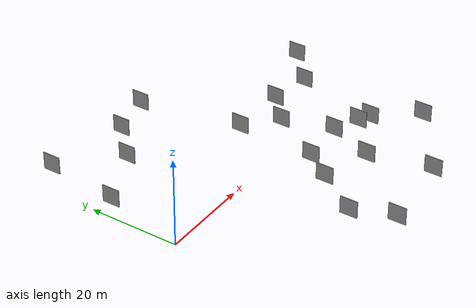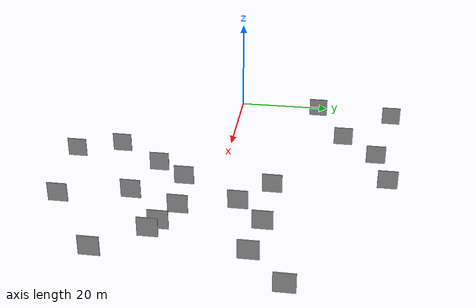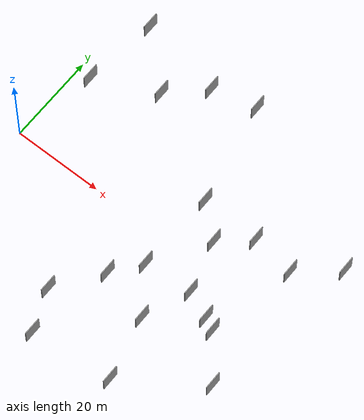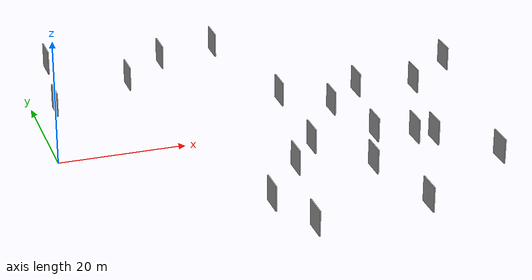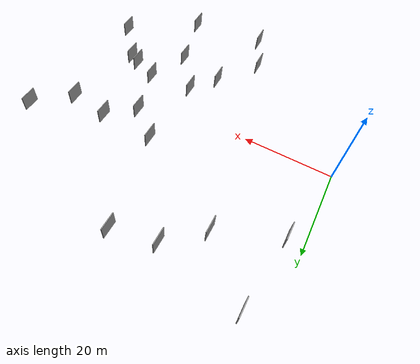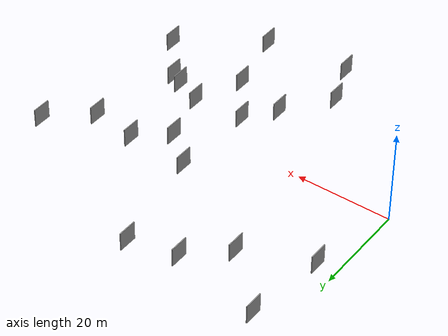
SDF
<sdf version="1.6">
 <world name="default">
  <scene>
   <sky><clouds><speed>12</speed></clouds></sky>
   <ambient>0.4 0.4 0.4 1</ambient>
   <background>0.7 0.7 0.7 1</background>
   <shadows>1</shadows>
  </scene>
  <gravity>0 0 -9.8066</gravity>
  <magnetic_field>6e-06 2.3e-05 -4.2e-05</magnetic_field>
  <physics default="0" name="default_physics" type="ode">
   <ode>
    <solver>
     <type>quick</type>
     <iters>10</iters>
     <sor>1.0</sor>
     <use_dynamic_moi_rescaling>0</use_dynamic_moi_rescaling>
    </solver>
    <constraints>
     <cfm>0</cfm>
     <erp>0.2</erp>
     <contact_max_correcting_vel>100</contact_max_correcting_vel>
     <contact_surface_layer>0.001</contact_surface_layer>
    </constraints>
   </ode>
   <max_step_size>0.004</max_step_size>
   <real_time_factor>1</real_time_factor>
   <real_time_update_rate>250</real_time_update_rate>
  </physics>
  <light name="sun" type="directional">
   <pose>0 0 10 0 0 0</pose>
   <diffuse>0.8 0.8 0.8 1</diffuse>
   <specular>0.2 0.2 0.2 1</specular>
   <attenuation>
    <range>1000</range>
    <constant>0.9</constant>
    <linear>0.01</linear>
    <quadratic>0.001</quadratic>
   </attenuation>
   <direction>-0.5 0.1 -0.9</direction>
  </light>
  <model name="grey_wall_1">
   <static>1</static>
   <pose>38.9085 11.0571 0.0 0.000000 0.000000 1.570796</pose>
   <link name="link">
    <pose>0 0 2.00 0 0 0</pose>
    <collision name="collision"><geometry><box><size>4.00 0.2 4.00</size></box></geometry></collision>
    <visual name="visual">
     <cast_shadows>0</cast_shadows>
     <geometry><box><size>4.00 0.2 4.00</size></box></geometry>
     <material>
      <script>
       <uri>model://grey_wall/materials/scripts</uri>
       <uri>model://grey_wall/materials/textures</uri>
       <name>vrc/grey_wall</name>
      </script>
     </material>
    </visual>
   </link>
  </model>
  <model name="grey_wall_2">
   <static>1</static>
   <pose>5.6826 34.9874 0.0 0.000000 0.000000 1.570796</pose>
   <link name="link">
    <pose>0 0 2.00 0 0 0</pose>
    <collision name="collision"><geometry><box><size>4.00 0.2 4.00</size></box></geometry></collision>
    <visual name="visual">
     <cast_shadows>0</cast_shadows>
     <geometry><box><size>4.00 0.2 4.00</size></box></geometry>
     <material>
      <script>
       <uri>model://grey_wall/materials/scripts</uri>
       <uri>model://grey_wall/materials/textures</uri>
       <name>vrc/grey_wall</name>
      </script>
     </material>
    </visual>
   </link>
  </model>
  <model name="grey_wall_3">
   <static>1</static>
   <pose>54.5707 -8.5110 0.0 0.000000 0.000000 1.570796</pose>
   <link name="link">
    <pose>0 0 2.00 0 0 0</pose>
    <collision name="collision"><geometry><box><size>4.00 0.2 4.00</size></box></geometry></collision>
    <visual name="visual">
     <cast_shadows>0</cast_shadows>
     <geometry><box><size>4.00 0.2 4.00</size></box></geometry>
     <material>
      <script>
       <uri>model://grey_wall/materials/scripts</uri>
       <uri>model://grey_wall/materials/textures</uri>
       <name>vrc/grey_wall</name>
      </script>
     </material>
    </visual>
   </link>
  </model>
  <model name="grey_wall_4">
   <static>1</static>
   <pose>45.7292 5.1613 0.0 0.000000 0.000000 1.570796</pose>
   <link name="link">
    <pose>0 0 2.00 0 0 0</pose>
    <collision name="collision"><geometry><box><size>4.00 0.2 4.00</size></box></geometry></collision>
    <visual name="visual">
     <cast_shadows>0</cast_shadows>
     <geometry><box><size>4.00 0.2 4.00</size></box></geometry>
     <material>
      <script>
       <uri>model://grey_wall/materials/scripts</uri>
       <uri>model://grey_wall/materials/textures</uri>
       <name>vrc/grey_wall</name>
      </script>
     </material>
    </visual>
   </link>
  </model>
  <model name="grey_wall_5">
   <static>1</static>
   <pose>26.5713 -22.8059 0.0 0.000000 0.000000 1.570796</pose>
   <link name="link">
    <pose>0 0 2.00 0 0 0</pose>
    <collision name="collision"><geometry><box><size>4.00 0.2 4.00</size></box></geometry></collision>
    <visual name="visual">
     <cast_shadows>0</cast_shadows>
     <geometry><box><size>4.00 0.2 4.00</size></box></geometry>
     <material>
      <script>
       <uri>model://grey_wall/materials/scripts</uri>
       <uri>model://grey_wall/materials/textures</uri>
       <name>vrc/grey_wall</name>
      </script>
     </material>
    </visual>
   </link>
  </model>
  <model name="grey_wall_6">
   <static>1</static>
   <pose>69.7417 16.3689 0.0 0.000000 0.000000 1.570796</pose>
   <link name="link">
    <pose>0 0 2.00 0 0 0</pose>
    <collision name="collision"><geometry><box><size>4.00 0.2 4.00</size></box></geometry></collision>
    <visual name="visual">
     <cast_shadows>0</cast_shadows>
     <geometry><box><size>4.00 0.2 4.00</size></box></geometry>
     <material>
      <script>
       <uri>model://grey_wall/materials/scripts</uri>
       <uri>model://grey_wall/materials/textures</uri>
       <name>vrc/grey_wall</name>
      </script>
     </material>
    </visual>
   </link>
  </model>
  <model name="grey_wall_7">
   <static>1</static>
   <pose>38.1925 -6.8814 0.0 0.000000 0.000000 1.570796</pose>
   <link name="link">
    <pose>0 0 2.00 0 0 0</pose>
    <collision name="collision"><geometry><box><size>4.00 0.2 4.00</size></box></geometry></collision>
    <visual name="visual">
     <cast_shadows>0</cast_shadows>
     <geometry><box><size>4.00 0.2 4.00</size></box></geometry>
     <material>
      <script>
       <uri>model://grey_wall/materials/scripts</uri>
       <uri>model://grey_wall/materials/textures</uri>
       <name>vrc/grey_wall</name>
      </script>
     </material>
    </visual>
   </link>
  </model>
  <model name="grey_wall_8">
   <static>1</static>
   <pose>17.0410 24.4234 0.0 0.000000 0.000000 1.570796</pose>
   <link name="link">
    <pose>0 0 2.00 0 0 0</pose>
    <collision name="collision"><geometry><box><size>4.00 0.2 4.00</size></box></geometry></collision>
    <visual name="visual">
     <cast_shadows>0</cast_shadows>
     <geometry><box><size>4.00 0.2 4.00</size></box></geometry>
     <material>
      <script>
       <uri>model://grey_wall/materials/scripts</uri>
       <uri>model://grey_wall/materials/textures</uri>
       <name>vrc/grey_wall</name>
      </script>
     </material>
    </visual>
   </link>
  </model>
  <model name="grey_wall_9">
   <static>1</static>
   <pose>30.0498 -31.7685 0.0 0.000000 0.000000 1.570796</pose>
   <link name="link">
    <pose>0 0 2.00 0 0 0</pose>
    <collision name="collision"><geometry><box><size>4.00 0.2 4.00</size></box></geometry></collision>
    <visual name="visual">
     <cast_shadows>0</cast_shadows>
     <geometry><box><size>4.00 0.2 4.00</size></box></geometry>
     <material>
      <script>
       <uri>model://grey_wall/materials/scripts</uri>
       <uri>model://grey_wall/materials/textures</uri>
       <name>vrc/grey_wall</name>
      </script>
     </material>
    </visual>
   </link>
  </model>
  <model name="grey_wall_10">
   <static>1</static>
   <pose>61.5124 9.2708 0.0 0.000000 0.000000 1.570796</pose>
   <link name="link">
    <pose>0 0 2.00 0 0 0</pose>
    <collision name="collision"><geometry><box><size>4.00 0.2 4.00</size></box></geometry></collision>
    <visual name="visual">
     <cast_shadows>0</cast_shadows>
     <geometry><box><size>4.00 0.2 4.00</size></box></geometry>
     <material>
      <script>
       <uri>model://grey_wall/materials/scripts</uri>
       <uri>model://grey_wall/materials/textures</uri>
       <name>vrc/grey_wall</name>
      </script>
     </material>
    </visual>
   </link>
  </model>
  <model name="grey_wall_11">
   <static>1</static>
   <pose>44.7983 -16.2417 0.0 0.000000 0.000000 1.570796</pose>
   <link name="link">
    <pose>0 0 2.00 0 0 0</pose>
    <collision name="collision"><geometry><box><size>4.00 0.2 4.00</size></box></geometry></collision>
    <visual name="visual">
     <cast_shadows>0</cast_shadows>
     <geometry><box><size>4.00 0.2 4.00</size></box></geometry>
     <material>
      <script>
       <uri>model://grey_wall/materials/scripts</uri>
       <uri>model://grey_wall/materials/textures</uri>
       <name>vrc/grey_wall</name>
      </script>
     </material>
    </visual>
   </link>
  </model>
  <model name="grey_wall_12">
   <static>1</static>
   <pose>48.8252 -6.0174 0.0 0.000000 0.000000 1.570796</pose>
   <link name="link">
    <pose>0 0 2.00 0 0 0</pose>
    <collision name="collision"><geometry><box><size>4.00 0.2 4.00</size></box></geometry></collision>
    <visual name="visual">
     <cast_shadows>0</cast_shadows>
     <geometry><box><size>4.00 0.2 4.00</size></box></geometry>
     <material>
      <script>
       <uri>model://grey_wall/materials/scripts</uri>
       <uri>model://grey_wall/materials/textures</uri>
       <name>vrc/grey_wall</name>
      </script>
     </material>
    </visual>
   </link>
  </model>
  <model name="grey_wall_13">
   <static>1</static>
   <pose>51.9696 10.6356 0.0 0.000000 0.000000 1.570796</pose>
   <link name="link">
    <pose>0 0 2.00 0 0 0</pose>
    <collision name="collision"><geometry><box><size>4.00 0.2 4.00</size></box></geometry></collision>
    <visual name="visual">
     <cast_shadows>0</cast_shadows>
     <geometry><box><size>4.00 0.2 4.00</size></box></geometry>
     <material>
      <script>
       <uri>model://grey_wall/materials/scripts</uri>
       <uri>model://grey_wall/materials/textures</uri>
       <name>vrc/grey_wall</name>
      </script>
     </material>
    </visual>
   </link>
  </model>
  <model name="grey_wall_14">
   <static>1</static>
   <pose>64.2931 -18.7359 0.0 0.000000 0.000000 1.570796</pose>
   <link name="link">
    <pose>0 0 2.00 0 0 0</pose>
    <collision name="collision"><geometry><box><size>4.00 0.2 4.00</size></box></geometry></collision>
    <visual name="visual">
     <cast_shadows>0</cast_shadows>
     <geometry><box><size>4.00 0.2 4.00</size></box></geometry>
     <material>
      <script>
       <uri>model://grey_wall/materials/scripts</uri>
       <uri>model://grey_wall/materials/textures</uri>
       <name>vrc/grey_wall</name>
      </script>
     </material>
    </visual>
   </link>
  </model>
  <model name="grey_wall_15">
   <static>1</static>
   <pose>3.5482 18.2294 0.0 0.000000 0.000000 1.570796</pose>
   <link name="link">
    <pose>0 0 2.00 0 0 0</pose>
    <collision name="collision"><geometry><box><size>4.00 0.2 4.00</size></box></geometry></collision>
    <visual name="visual">
     <cast_shadows>0</cast_shadows>
     <geometry><box><size>4.00 0.2 4.00</size></box></geometry>
     <material>
      <script>
       <uri>model://grey_wall/materials/scripts</uri>
       <uri>model://grey_wall/materials/textures</uri>
       <name>vrc/grey_wall</name>
      </script>
     </material>
    </visual>
   </link>
  </model>
  <model name="grey_wall_16">
   <static>1</static>
   <pose>57.2522 -9.8718 0.0 0.000000 0.000000 1.570796</pose>
   <link name="link">
    <pose>0 0 2.00 0 0 0</pose>
    <collision name="collision"><geometry><box><size>4.00 0.2 4.00</size></box></geometry></collision>
    <visual name="visual">
     <cast_shadows>0</cast_shadows>
     <geometry><box><size>4.00 0.2 4.00</size></box></geometry>
     <material>
      <script>
       <uri>model://grey_wall/materials/scripts</uri>
       <uri>model://grey_wall/materials/textures</uri>
       <name>vrc/grey_wall</name>
      </script>
     </material>
    </visual>
   </link>
  </model>
  <model name="grey_wall_17">
   <static>1</static>
   <pose>24.4171 31.4657 0.0 0.000000 0.000000 1.570796</pose>
   <link name="link">
    <pose>0 0 2.00 0 0 0</pose>
    <collision name="collision"><geometry><box><size>4.00 0.2 4.00</size></box></geometry></collision>
    <visual name="visual">
     <cast_shadows>0</cast_shadows>
     <geometry><box><size>4.00 0.2 4.00</size></box></geometry>
     <material>
      <script>
       <uri>model://grey_wall/materials/scripts</uri>
       <uri>model://grey_wall/materials/textures</uri>
       <name>vrc/grey_wall</name>
      </script>
     </material>
    </visual>
   </link>
  </model>
  <model name="grey_wall_18">
   <static>1</static>
   <pose>34.3332 33.7647 0.0 0.000000 0.000000 1.570796</pose>
   <link name="link">
    <pose>0 0 2.00 0 0 0</pose>
    <collision name="collision"><geometry><box><size>4.00 0.2 4.00</size></box></geometry></collision>
    <visual name="visual">
     <cast_shadows>0</cast_shadows>
     <geometry><box><size>4.00 0.2 4.00</size></box></geometry>
     <material>
      <script>
       <uri>model://grey_wall/materials/scripts</uri>
       <uri>model://grey_wall/materials/textures</uri>
       <name>vrc/grey_wall</name>
      </script>
     </material>
    </visual>
   </link>
  </model>
  <model name="grey_wall_19">
   <static>1</static>
   <pose>48.0445 -30.0251 0.0 0.000000 0.000000 1.570796</pose>
   <link name="link">
    <pose>0 0 2.00 0 0 0</pose>
    <collision name="collision"><geometry><box><size>4.00 0.2 4.00</size></box></geometry></collision>
    <visual name="visual">
     <cast_shadows>0</cast_shadows>
     <geometry><box><size>4.00 0.2 4.00</size></box></geometry>
     <material>
      <script>
       <uri>model://grey_wall/materials/scripts</uri>
       <uri>model://grey_wall/materials/textures</uri>
       <name>vrc/grey_wall</name>
      </script>
     </material>
    </visual>
   </link>
  </model>
  <model name="grey_wall_20">
   <static>1</static>
   <pose>33.5280 -13.0255 0.0 0.000000 0.000000 1.570796</pose>
   <link name="link">
    <pose>0 0 2.00 0 0 0</pose>
    <collision name="collision"><geometry><box><size>4.00 0.2 4.00</size></box></geometry></collision>
    <visual name="visual">
     <cast_shadows>0</cast_shadows>
     <geometry><box><size>4.00 0.2 4.00</size></box></geometry>
     <material>
      <script>
       <uri>model://grey_wall/materials/scripts</uri>
       <uri>model://grey_wall/materials/textures</uri>
       <name>vrc/grey_wall</name>
      </script>
     </material>
    </visual>
   </link>
  </model>
 </world>
</sdf>
